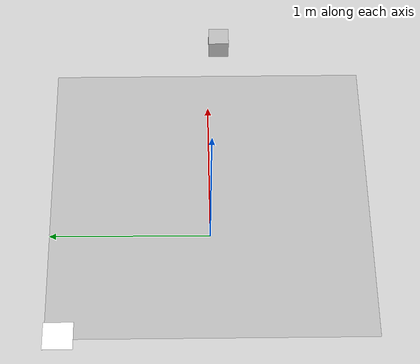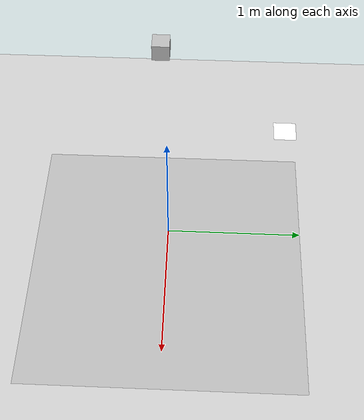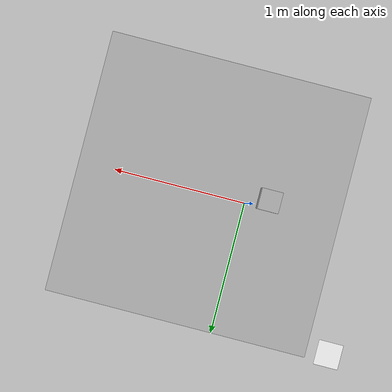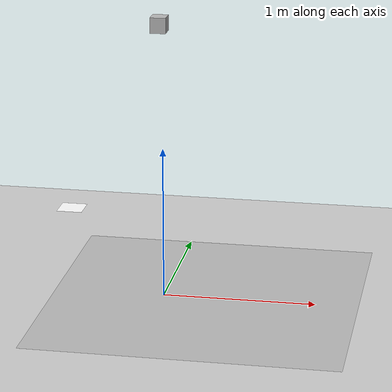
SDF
<sdf version="1.7">
 <world name="default">
  <scene><ambient>0.4 0.4 0.4 1</ambient><background>0.7 0.7 0.7 1</background><shadows>1</shadows></scene>
  <light name="sun" type="directional">
   <pose>0 0 10 0 -0 0</pose>
   <diffuse>0.8 0.8 0.8 1</diffuse>
   <specular>0.2 0.2 0.2 1</specular>
   <attenuation>
    <range>1000</range>
    <constant>0.9</constant>
    <linear>0.01</linear>
    <quadratic>0.001</quadratic>
   </attenuation>
   <direction>-0.5 0.1 -0.9</direction>
   <spot><inner_angle>0</inner_angle><outer_angle>0</outer_angle><falloff>0</falloff></spot>
  </light>
  <model name="ground_plane">
   <static>1</static>
   <link name="link">
    <collision name="collision">
     <geometry><plane><normal>0 0 1</normal><size>100 100</size></plane></geometry>
     <surface>
      <contact><collide_bitmask>65535</collide_bitmask></contact>
      <friction><ode><mu>100</mu><mu2>50</mu2></ode></friction>
     </surface>
    </collision>
    <visual name="visual">
     <cast_shadows>0</cast_shadows>
     <geometry><plane><normal>0 0 1</normal><size>100 100</size></plane></geometry>
     <material>
      <script><uri>file://media/materials/scripts/gazebo.material</uri><name>Gazebo/Grey</name></script>
     </material>
    </visual>
   </link>
  </model>
  <physics name="default_physics" default="0" type="ode">
   <real_time_update_rate>1000</real_time_update_rate>
   <max_step_size>0.001</max_step_size>
   <real_time_factor>1</real_time_factor>
   <ode>
    <solver>
     <type>quick</type>
     <iters>150</iters>
     <precon_iters>0</precon_iters>
     <sor>1.4</sor>
     <use_dynamic_moi_rescaling>1</use_dynamic_moi_rescaling>
    </solver>
    <constraints>
     <cfm>1e-05</cfm>
     <erp>0.2</erp>
     <contact_max_correcting_vel>2000</contact_max_correcting_vel>
     <contact_surface_layer>0.01</contact_surface_layer>
    </constraints>
   </ode>
  </physics>
  <gravity>0 0 -9.8</gravity>
  <magnetic_field>6e-06 2.3e-05 -4.2e-05</magnetic_field>
  <atmosphere type="adiabatic"/>
  <spherical_coordinates>
   <surface_model>EARTH_WGS84</surface_model>
   <latitude_deg>0</latitude_deg>
   <longitude_deg>0</longitude_deg>
   <elevation>0</elevation>
   <heading_deg>0</heading_deg>
  </spherical_coordinates>
  <model name="camera">
   <static>1</static>
   <pose>-0.011474 -0.023028 1.82648 -3.14159 -0 0</pose>
   <link name="link">
    <collision name="collision"><geometry><box><size>0.1 0.1 0.1</size></box></geometry></collision>
    <visual name="visual"><geometry><box><size>0.1 0.1 0.1</size></box></geometry></visual>
    <sensor name="camera" type="wideanglecamera">
     <camera name="left">
      <horizontal_fov>3.14159</horizontal_fov>
      <image><width>1280</width><height>1024</height><format>R8G8B8</format></image>
      <clip><near>0.15</near><far>1500</far></clip>
      <noise><type>gaussian</type><mean>0</mean><stddev>0.0001</stddev></noise>
      <lens>
       <type>custom</type>
       <custom_function><c1>1</c1><c2>2.05</c2><f>7.5</f><fun>tan</fun></custom_function>
       <scale_to_hfov>1</scale_to_hfov>
       <cutoff_angle>2.84489</cutoff_angle>
       <env_texture_size>512</env_texture_size>
      </lens>
     </camera>
     <plugin name="camera_controller" filename="libgazebo_ros_camera.so">
      <robotNamespace>/t265</robotNamespace>
      <cameraName>stereo_ir/left</cameraName>
      <imageTopicName>fisheye_image_raw</imageTopicName>
      <cameraInfoTopicName>camera_info</cameraInfoTopicName>
      <frameName>camera_link</frameName>
      <hackBaseline>0</hackBaseline>
     </plugin>
    </sensor>
   </link>
  </model>
  <model name="checkerboard_plane">
   <static>1</static>
   <link name="link">
    <visual name="visual">
     <geometry><mesh><uri>model://checkerboard_plane/meshes/checkerboard_plane.dae</uri></mesh></geometry>
    </visual>
   </link>
   <pose>0.277114 0 0.001 0 -0 0</pose>
  </model>
  <audio><device>default</device></audio>
  <model name="aruco_visual_marker_3">
   <link name="marker">
    <visual name="visual">
     <geometry><box><size>0.1778 0.1778 1e-05</size></box></geometry>
     <material>
      <script>
       <uri>model://aruco_visual_marker_3/materials/scripts</uri>
       <uri>model://aruco_visual_marker_3/materials/textures</uri>
       <name>ArucoVisualMarker3/Marker</name>
      </script>
      <ambient>1 1 1 1</ambient>
      <diffuse>1 1 1 1</diffuse>
      <specular>0 0 0 1</specular>
      <emissive>1 1 1 0</emissive>
      <shader type="vertex"><normal_map>__default__</normal_map></shader>
     </material>
    </visual>
    <collision name="collision"><geometry><box><size>0.1778 0.1778 1e-05</size></box></geometry></collision>
   </link>
   <link name="marker_pad">
    <pose relative_to="marker">0 0 -1e-05 0 -0 0</pose>
    <visual name="visual">
     <geometry><box><size>0.1778 0.1778 1e-05</size></box></geometry>
     <material>
      <lighting>1</lighting>
      <script><uri>file://media/materials/scripts/gazebo.material</uri><name>Gazebo/White</name></script>
      <ambient>0.3 0.3 0.3 1</ambient>
      <diffuse>0.7 0.7 0.7 1</diffuse>
      <specular>0.01 0.01 0.01 1</specular>
      <emissive>1 1 1 0</emissive>
      <shader type="vertex"><normal_map>__default__</normal_map></shader>
     </material>
    </visual>
    <collision name="collision"><geometry><box><size>0.1778 0.1778 1e-05</size></box></geometry></collision>
   </link>
   <joint name="marker_JOINT_marker_pad" type="revolute">
    <parent>marker</parent>
    <child>marker_pad</child>
    <axis>
     <xyz>0 0 1</xyz>
     <limit><upper>0</upper><lower>0</lower></limit>
     <dynamics><spring_reference>0</spring_reference><spring_stiffness>0</spring_stiffness></dynamics>
    </axis>
   </joint>
   <static>1</static>
   <pose>-0.833685 0.891676 0.243928 0 -0 0</pose>
  </model>
 </world>
</sdf>
